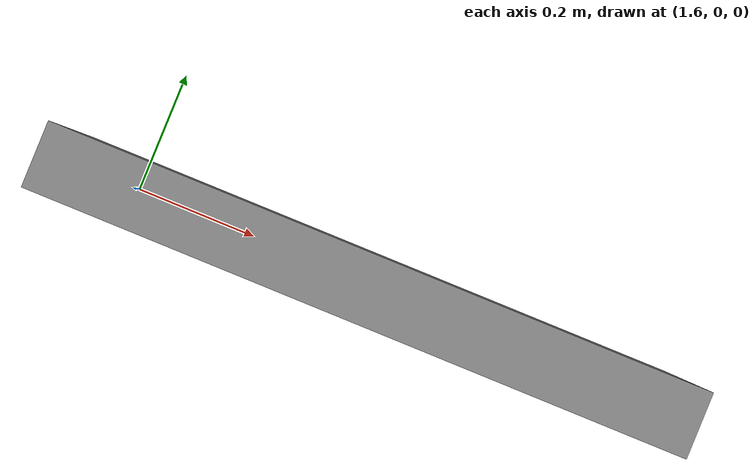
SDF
<?xml version="1.0" ?>
<sdf version="1.6">
  <world name="my_simple_world">

    <!-- Light -->
    <include>
      <uri>model://sun</uri>
    </include>

    <!-- Ground plane -->
    <include>
      <uri>model://ground_plane</uri>
    </include>

    <!-- White road -->
    <model name="white_road">
      <static>true</static>
      <link name="road_link">
        <visual name="road_visual">
          <geometry>
            <box>
              <size>10 2 0.01</size>
            </box>
          </geometry>
          <material>
            <ambient>1 1 1 1</ambient>
            <diffuse>1 1 1 1</diffuse>
          </material>
        </visual>
      </link>
      <pose>0 0 0.005 0 0 0</pose>
    </model>

    <!-- Wall -->
    <model name="wall1">
      <static>true</static>
      <link name="wall_link">
        <visual name="wall_visual">
          <geometry>
            <box>
              <size>1 0.1 1</size>
            </box>
          </geometry>
          <material>
            <ambient>0.5 0.5 0.5 1</ambient>
            <diffuse>0.5 0.5 0.5 1</diffuse>
          </material>
        </visual>
      </link>
      <pose>2 0 0.5 0 0 0</pose>
    </model>

  </world>
</sdf>
